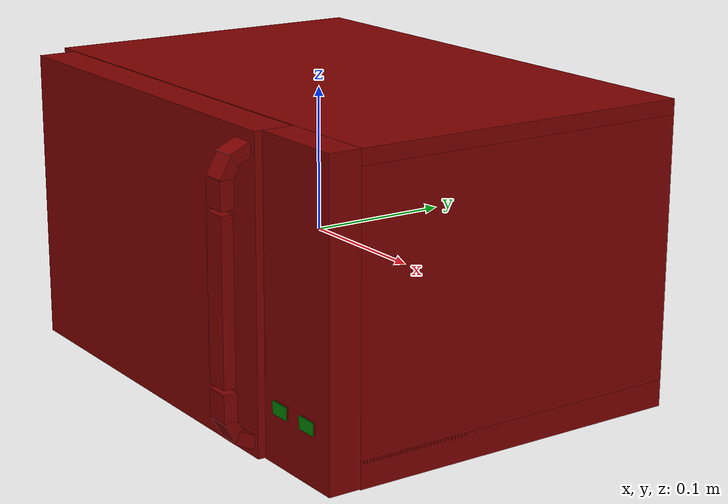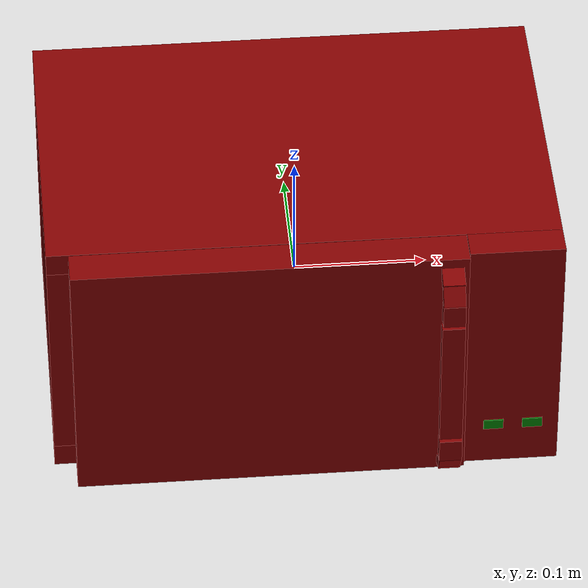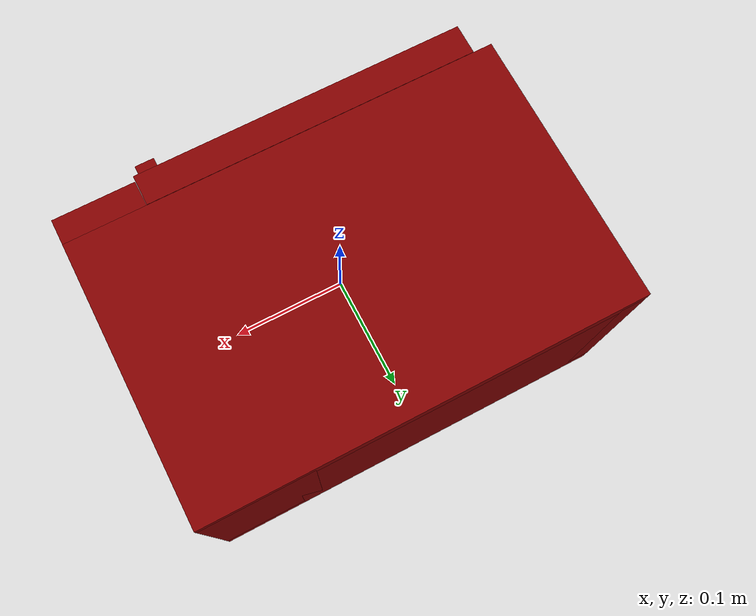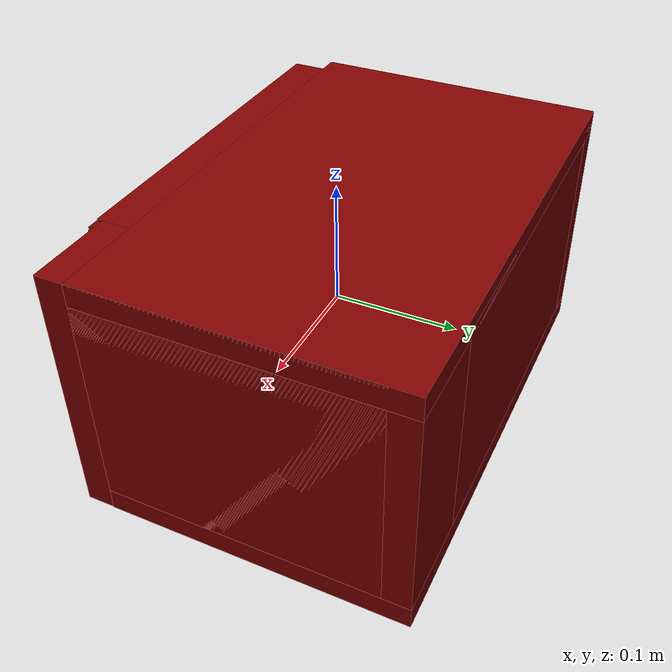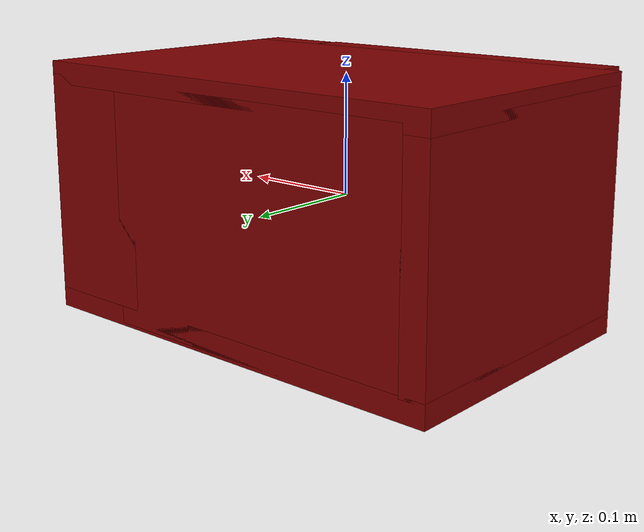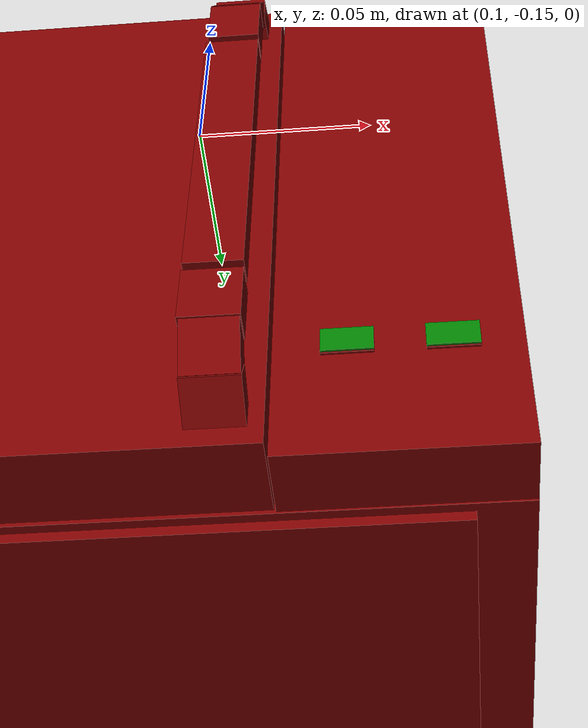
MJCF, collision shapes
<mujoco model="model">
  <compiler angle="radian"/>
  <asset>
    <mesh file="visuals/door.obj" name="door_vis"/>
    <mesh file="visuals/door_Clear.obj" name="door_Clear_vis"/>
    <mesh file="visuals/Body001.obj" name="Body001_vis"/>
    <mesh file="visuals/Button001.obj" name="Button001_vis"/>
    <mesh file="visuals/Button002.obj" name="Button002_vis"/>
    <mesh file="visuals/Disc001.obj" name="Disc001_vis"/>
    <texture file="visuals/T_BC001.png" name="Body001_material" type="2d"/>
    <material name="Body001_material" rgba="1 1 1 1.0" texture="Body001_material" shininess="0.4472135901451111" specular="0.3103448502657381"/>
    <texture file="visuals/T_BC001.png" name="door_material" type="2d"/>
    <material name="door_material" rgba="1 1 1 1.0" texture="door_material" shininess="0.4472135901451111" specular="0.3103448502657381"/>
    <texture file="visuals/T_BC001.png" name="door_Clear_material" type="2d"/>
    <material name="door_Clear_material" rgba="1 1 1 0.9370079040527344" texture="door_Clear_material" shininess="0.4472135901451111" specular="0.3103448502657381"/>
    <texture file="visuals/T_BC001.png" name="Button001_material" type="2d"/>
    <material name="Button001_material" rgba="1 1 1 1.0" texture="Button001_material" shininess="0.4472135901451111" specular="0.3103448502657381"/>
    <texture file="visuals/T_BC001.png" name="Button002_material" type="2d"/>
    <material name="Button002_material" rgba="1 1 1 1.0" texture="Button002_material" shininess="0.4472135901451111" specular="0.3103448502657381"/>
    <texture file="visuals/T_BC001.png" name="Disc001_material" type="2d"/>
    <material name="Disc001_material" rgba="1 1 1 1.0" texture="Disc001_material" shininess="0.4472135901451111" specular="0.3103448502657381"/>
  </asset>
  <default>
    <default class="visual">
      <geom conaffinity="0" contype="0" group="1" type="mesh"/>
    </default>
    <default class="collision">
      <geom group="0" rgba="0.5 0 0 0.5"/>
    </default>
    <default class="spawn">
      <geom group="0" rgba="1 1 1 0.5" contype="0" conaffinity="0"/>
      <site group="0" rgba="1 1 1 0.5"/>
    </default>
    <default class="region">
      <geom group="1" conaffinity="0" contype="0" rgba="0 1 0 0"/>
    </default>
  </default>
  <worldbody>
    <body>
      <body name="object">
        <geom class="collision" type="box" pos="-0.028358621522784233 0.013290246948599815 -0.07131858170032501" size="0.09706845134496689 0.09706845134496689 0.001366451964713633" quat="1.0 0.0 0.0 0.0" name="tray" rgba="0 1 0 0.5"/>
        <geom class="collision" type="box" pos="0.17020609974861145 -0.12223824113607407 -0.0609002523124218" size="0.007528816349804401 0.0003798885445576161 0.004284651950001717" quat="1.0 0.0 0.0 0.0" name="stop_button" rgba="0.0 0.5 0 0.5"/>
        <geom class="collision" type="box" pos="0.14081987738609314 -0.12223824113607407 -0.0609002523124218" size="0.007488226052373648 0.0003798885445576161 0.004284651950001717" quat="1.0 0.0 0.0 0.0" name="start_button" rgba="0.0 0.5 0 0.5"/>
        <geom mesh="Body001_vis" type="mesh" solimp="0.998 0.998 0.001" solref="0.001 1" density="100" friction="0.95 0.3 0.1" class="visual" material="Body001_material"/>
        <geom class="collision" type="box" pos="1.0350049706175923e-08 0.024045372381806374 0.09887892007827759" size="0.19032159447669983 0.12105203419923782 0.009055882692337036" quat="1.0 0.0 0.0 0.0"/>
        <geom class="collision" type="box" pos="1.0350049706175923e-08 0.024045372381806374 -0.09159435331821442" size="0.19032159447669983 0.12105203419923782 0.009296208620071411" quat="1.0 0.0 0.0 0.0"/>
        <geom class="collision" type="box" pos="-0.17936785519123077 0.02404537796974182 0.006544657051563263" size="0.01095373835414648 0.12105204910039902 0.09104695171117783" quat="1.0 0.0 0.0 0.0"/>
        <geom class="collision" type="box" pos="0.1421554535627365 0.024045372381806374 0.006544657051563263" size="0.04816613718867302 0.12105203419923782 0.09104695171117783" quat="1.0 0.0 0.0 0.0"/>
        <geom class="collision" type="box" pos="-0.028289802372455597 0.13494117558002472 -0.0006960555911064148" size="0.14087243378162384 0.010156232863664627 0.09765562415122986" quat="1.0 0.0 0.0 0.0"/>
        <geom class="collision" type="box" pos="0.15496116876602173 0.0019041504710912704 0.0037999057676643133" size="0.0353604294359684 0.12120203673839569 0.10406854748725891" quat="1.0 0.0 0.0 0.0"/>
        <geom class="collision" type="box" pos="0.010666112415492535 0.022804640233516693 -0.10039865970611572" size="0.16285006701946259 0.11674801260232925 0.003606360172852874" quat="1.0 0.0 0.0 0.0"/>
        <body name="door">
          <joint axis="0.0 0.0 1.0" pos="-0.17673000693321228 -0.11101499944925308 0.002570186974480748" limited="true" name="microjoint" range="-1.5707963267948966 0.0" type="hinge" damping="1" frictionloss="1" armature=".01" stiffness="0.05"/>
          <geom mesh="door_vis" type="mesh" solimp="0.998 0.998 0.001" solref="0.001 1" density="100" friction="0.95 0.3 0.1" class="visual" material="door_material"/>
          <geom class="collision" type="box" pos="-0.027389097958803177 -0.11087623238563538 0.0038653300143778324" size="0.1464606523513794 0.013441362418234348 0.10381379723548889" quat="1.0 0.0 0.0 0.0"/>
          <geom class="collision" type="box" pos="0.10594651103019714 -0.14124128222465515 0.0030987367499619722" size="0.008540633134543896 0.004183594137430191 0.05487598851323128" quat="1.0 0.0 0.0 0.0" name="door_handle"/>
          <geom class="collision" type="box" pos="0.10604531317949295 -0.14087611436843872 -0.06421096622943878" size="0.008593483828008175 0.004725207109004259 0.00935653131455183" quat="1.0 0.0 0.0 0.0"/>
          <geom class="collision" type="box" pos="0.10620342195034027 -0.13794715702533722 -0.07877138257026672" size="0.008181553333997726 0.007795604411512613 0.004228119272738695" quat="0.864357054233551 -0.5028786063194275 7.70788858517335e-07 -5.2654737459079115e-08"/>
          <geom class="collision" type="box" pos="0.10630626976490021 -0.12978330254554749 -0.08767994493246078" size="0.008360990323126316 0.007139554712921381 0.004450090695172548" quat="0.9755166172981262 -0.21992571651935577 4.951577352585446e-07 7.552212082373444e-07"/>
          <geom class="collision" type="box" pos="0.10617989301681519 -0.14087611436843872 0.07008419185876846" size="0.008236037567257881 0.00472520524635911 0.009356530383229256" quat="1.0 0.0 0.0 0.0"/>
          <geom class="collision" type="box" pos="0.10623064637184143 -0.13794715702533722 0.08464460074901581" size="0.008125384338200092 0.007795603480190039 0.004228119272738695" quat="9.661798827664825e-08 -6.952240596547199e-07 -0.5028786063194275 0.864357054233551"/>
          <geom class="collision" type="box" pos="0.10637776553630829 -0.12978330254554749 0.09355316311120987" size="0.008289498277008533 0.007139554712921381 0.004450090695172548" quat="7.978625831128738e-07 4.85545058381831e-07 0.21992571651935577 -0.9755166172981262"/>
          <body name="door_Clear">
            <geom mesh="door_Clear_vis" type="mesh" solimp="0.998 0.998 0.001" solref="0.001 1" density="100" friction="0.95 0.3 0.1" class="visual" material="door_Clear_material"/>
            <geom class="collision" type="box" pos="-0.034951020032167435 -0.11038364470005035 0.0040452550165355206" size="0.11288779228925705 0.010571201331913471 0.07227341085672379" quat="1.0 0.0 0.0 0.0"/>
          </body>
        </body>
        <body name="Button001">
          <joint axis="0.0 1.0 0.0" pos="0.14085829257965088 -0.12158861011266708 -0.060893215239048004" limited="true" name="Button001_joint" range="0.0 0.001" type="slide" damping="1" frictionloss="1" armature=".01" stiffness="0.05"/>
          <geom mesh="Button001_vis" type="mesh" solimp="0.998 0.998 0.001" solref="0.001 1" density="100" friction="0.95 0.3 0.1" class="visual" material="Button001_material"/>
          <geom class="collision" type="box" pos="0.14081987738609314 -0.12115282565355301 -0.0609002523124218" size="0.007488226052373648 0.0003798885445576161 0.004284651950001717" quat="1.0 0.0 0.0 0.0"/>
        </body>
        <body name="Button002">
          <joint axis="0.0 1.0 0.0" pos="0.17020092904567719 -0.12158861011266708 -0.06091861426830292" limited="true" name="Button002_joint" range="0.0 0.001" type="slide" damping="1" frictionloss="1" armature=".01" stiffness="0.05"/>
          <geom mesh="Button002_vis" type="mesh" solimp="0.998 0.998 0.001" solref="0.001 1" density="100" friction="0.95 0.3 0.1" class="visual" material="Button002_material"/>
          <geom class="collision" type="box" pos="0.17020609974861145 -0.12115282565355301 -0.0609002523124218" size="0.007528816349804401 0.0003798885445576161 0.004284651950001717" quat="1.0 0.0 0.0 0.0"/>
        </body>
        <body name="Disc001">
          <joint axis="0.0 0.0 1.0" pos="-0.03691880777478218 0.013290251605212688 -0.0752209722995758" limited="false" name="Disc001_joint" range="0 360" type="hinge" damping="1" frictionloss="1" armature=".01" stiffness="0.05"/>
          <geom mesh="Disc001_vis" type="mesh" solimp="0.998 0.998 0.001" solref="0.001 1" density="100" friction="0.95 0.3 0.1" class="visual" material="Disc001_material"/>
          <geom class="collision" type="cylinder" pos="-0.028358621522784233 0.013290246948599815 -0.07545280456542969" size="0.09980271756649017 0.002052385825663805" quat="1.0 0.0 0.0 0.0"/>
        </body>
        <geom class="region" name="reg_main" type="box" pos="3.725290298461914e-09 0.010539937764406204 -3.725290298461914e-09" size="0.19032159447669983 0.13455748558044434 0.10793480277061462"/>
        <geom class="region" name="reg_int" type="box" pos="-0.03701280429959297 0.0156325101852417 0.004454348236322403" size="0.13110209628939629 0.10856042802333832 0.0841309018433094"/>
      </body>
    </body>
  </worldbody>
  <actuator>
    <motor name="microjoint_actuator" joint="microjoint" gear="5"/>
    <motor name="Button001_joint_actuator" joint="Button001_joint" gear="0.1"/>
    <motor name="Button002_joint_actuator" joint="Button002_joint" gear="0.1"/>
    <motor name="Disc001_joint_actuator" joint="Disc001_joint" gear="10"/>
  </actuator>
</mujoco>
